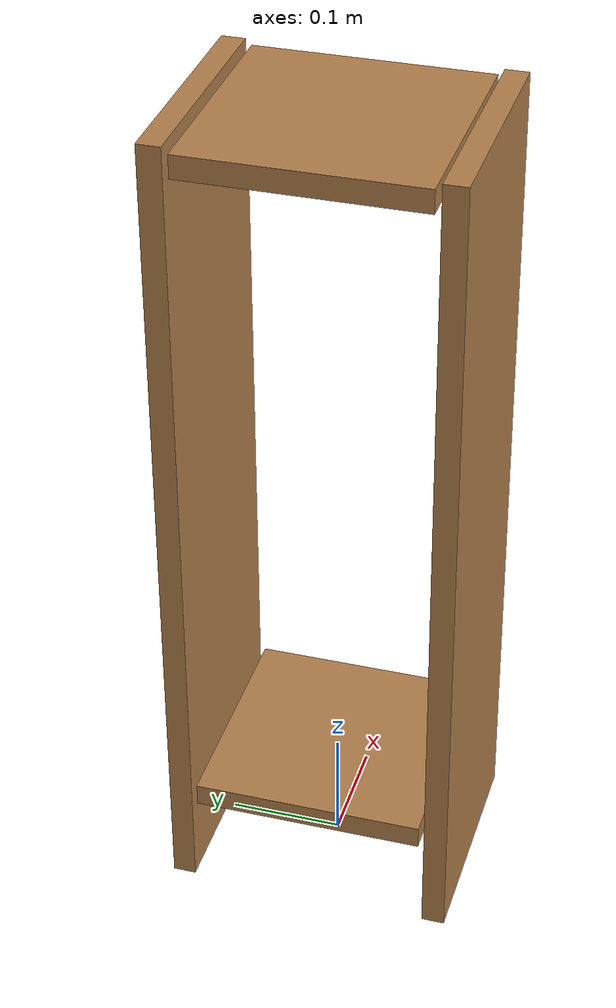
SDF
<?xml version="1.0" ?>
<sdf version="1.5">
  <model name="small_cabinet">
    <static>true</static>
    <link name="cabinet_bottom_plate">
      <inertial>
        <pose>0 0 -1 0 0 0</pose>
        <inertia>
          <ixx>2.050000</ixx>
          <ixy>0</ixy>
          <ixz>0</ixz>
          <iyy>2.050000</iyy>
          <iyz>0</iyz>
          <izz>2.050000</izz>
        </inertia>
        <mass>25.000000</mass>
      </inertial>
      <collision name="cabinet_bottom_plate_geom">
        <pose>0 0 0.10000 0 0 0</pose>
        <geometry>
          <box>
            <size>0.20000 0.20000 0.020000</size>
          </box>
        </geometry>
      </collision>
      <visual name="cabinet_bottom_plate_geom_visual">
        <pose>0 0 0.10000 0 0 0</pose>
        <geometry>
          <box>
            <size>0.20000 0.20000 0.020000</size>
          </box>
        </geometry>
        <material>
          <script>
            <uri>file://media/materials/scripts/gazebo.material</uri>
            <name>Gazebo/Wood</name>
          </script>
        </material>
      </visual>

      <collision name="cabinet_bottom_plate_geom_cabinet_left_plate">
        <pose>0 0.115000 0.365000 0 0 0</pose>
        <geometry>
          <box>
            <size>0.20000 0.020000 0.720000</size>
          </box>
        </geometry>
      </collision>
      <visual name="cabinet_bottom_plate_geom_cabinet_left_plate_visual">
        <pose>0 0.115000 0.365000 0 0 0</pose>
        <geometry>
          <box>
            <size>0.20000 0.020000 0.720000</size>
          </box>
        </geometry>
        <material>
          <script>
            <uri>file://media/materials/scripts/gazebo.material</uri>
            <name>Gazebo/Wood</name>
          </script>
        </material>
      </visual>
      <collision name="cabinet_bottom_plate_geom_cabinet_middle_plate">
        <pose>0 0 0.71000 0 0 0</pose>
        <geometry>
          <box>
            <size>0.20000 0.20000 0.020000</size>
          </box>
        </geometry>
      </collision>
      <visual name="cabinet_bottom_plate_geom_cabinet_middle_plate_visual">
        <pose>0 0 0.710000 0 0 0</pose>
        <geometry>
          <box>
            <size>0.20000 0.20000 0.020000</size>
          </box>
        </geometry>
        <material>
          <script>
            <uri>file://media/materials/scripts/gazebo.material</uri>
            <name>Gazebo/Wood</name>
          </script>
        </material>
      </visual>
      <collision name="cabinet_bottom_plate_geom_cabinet_right_plate">
        <pose>0 -0.115000 0.365000 0 0 0</pose>
        <geometry>
          <box>
            <size>0.20000 0.020000 0.720000</size>
          </box>
        </geometry>
      </collision>
      <visual name="cabinet_bottom_plate_geom_cabinet_right_plate_visual">
        <pose>0 -0.115000 0.365000 0 0 0</pose>
        <geometry>
          <box>
            <size>0.20000 0.020000 0.720000</size>
          </box>
        </geometry>
        <material>
          <script>
            <uri>file://media/materials/scripts/gazebo.material</uri>
            <name>Gazebo/Wood</name>
          </script>
        </material>
      </visual>

    </link>
  </model>
</sdf>
